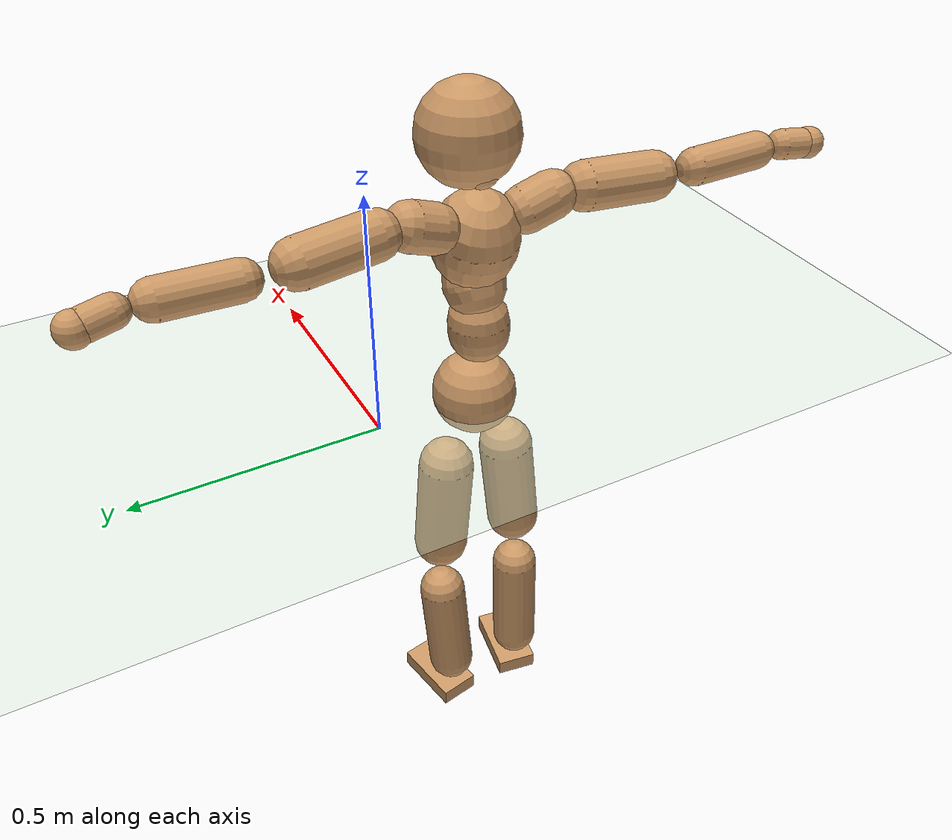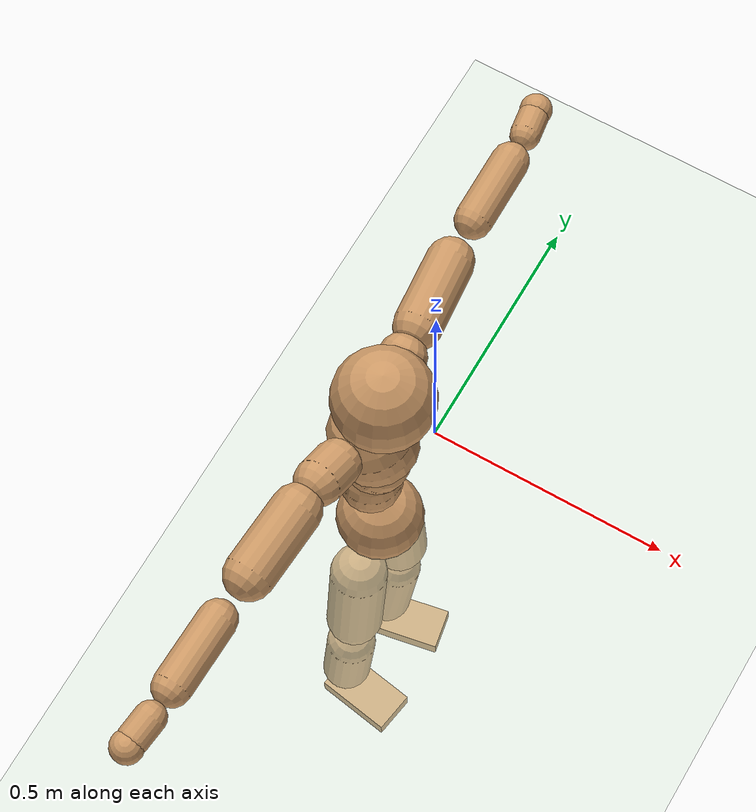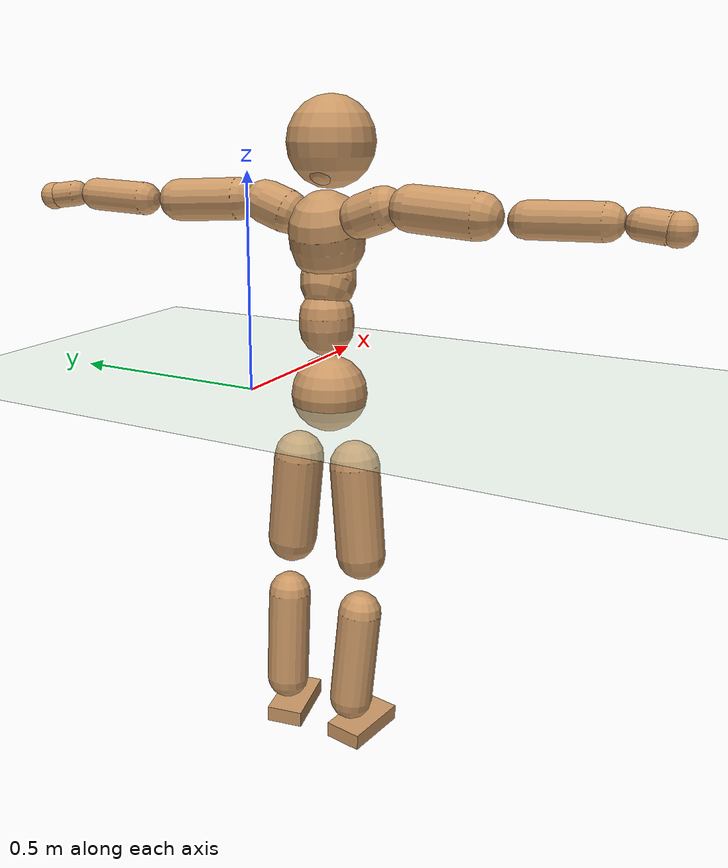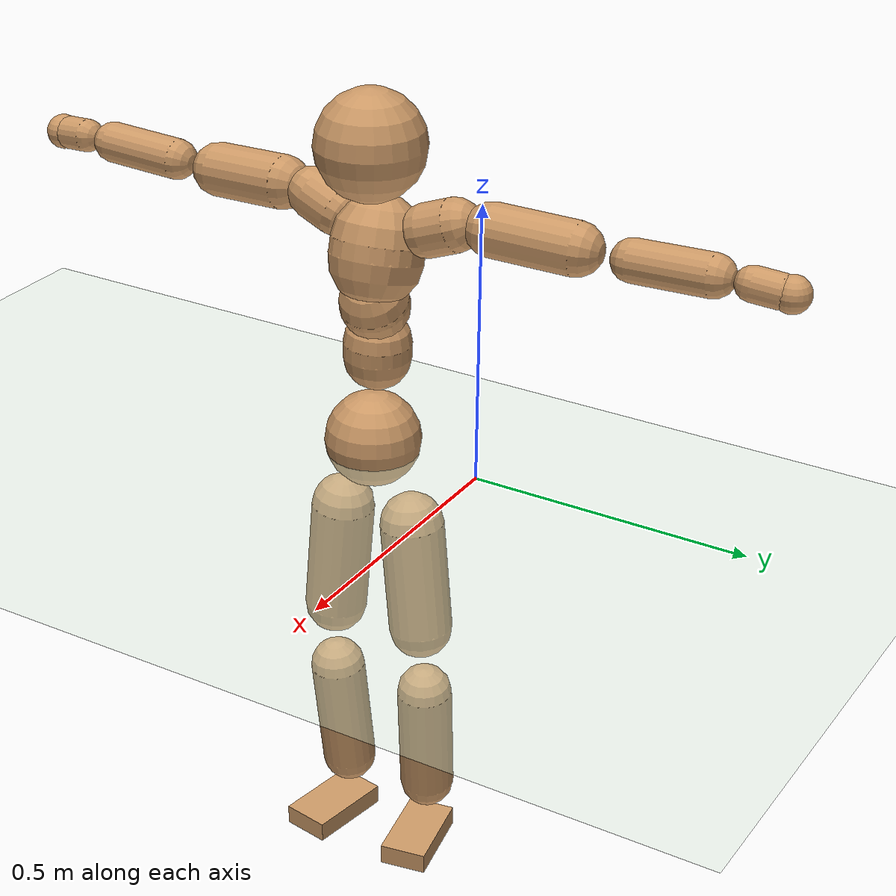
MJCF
<mujoco model="humanoid">
  <compiler coordinate="local"/>
  <default>
    <joint damping="0.0" armature="0.01" stiffness="0.0" limited="true"/>
    <geom conaffinity="1" condim="3" contype="7" margin="0.001" rgba="0.8 0.6 .4 1"/>
  </default>
  <asset>
    <texture type="skybox" builtin="gradient" rgb1=".4 .5 .6" rgb2="0 0 0" width="100" height="100"/>
    <texture builtin="flat" height="1278" mark="cross" markrgb="1 1 1" name="texgeom" random="0.01" rgb1="0.8 0.6 0.4" rgb2="0.8 0.6 0.4" type="cube" width="127"/>
    <texture builtin="checker" height="100" name="texplane" rgb1="0 0 0" rgb2="0.8 0.8 0.8" type="2d" width="100"/>
    <material name="MatPlane" reflectance="0.5" shininess="1" specular="1" texrepeat="60 60" texture="texplane"/>
    <material name="geom" texture="texgeom" texuniform="true"/>
  </asset>
  <worldbody>
    <light cutoff="100" diffuse="1 1 1" dir="-0 0 -1.3" directional="true" exponent="1" pos="0 0 1.3" specular=".1 .1 .1"/>
    <geom conaffinity="1" condim="3" name="floor" pos="0 0 0" rgba="0.8 0.9 0.8 1" size="100 100 .2" type="plane" material="MatPlane"/>
    <body name="Pelvis" pos="-0.0014 -0.2103 0.0211">
      <freejoint name="Pelvis"/>
      <geom type="sphere" contype="1" conaffinity="1" density="500" size="0.0864" pos="0.0000 0.0000 0.0000" name="Pelvis"/>
      <body name="L_Hip" pos="-0.0119 0.0665 -0.0874">
        <joint name="L_Hip_x" type="hinge" pos="0 0 0" axis="1 0 0" stiffness="800" damping="80" armature="0.02" range="-180.0000 180.0000"/>
        <joint name="L_Hip_y" type="hinge" pos="0 0 0" axis="0 1 0" stiffness="800" damping="80" armature="0.02" range="-180.0000 180.0000"/>
        <joint name="L_Hip_z" type="hinge" pos="0 0 0" axis="0 0 1" stiffness="800" damping="80" armature="0.02" range="-180.0000 180.0000"/>
        <geom type="capsule" contype="1" conaffinity="1" density="500" fromto="-0.0006 0.0062 -0.0712 -0.0024 0.0249 -0.2846" size="0.058" name="L_Hip"/>
        <body name="L_Knee" pos="-0.003 0.0312 -0.3558">
          <joint name="L_Knee_x" type="hinge" pos="0 0 0" axis="1 0 0" stiffness="800" damping="80" armature="0.02" range="-180.0000 180.0000"/>
          <joint name="L_Knee_y" type="hinge" pos="0 0 0" axis="0 1 0" stiffness="800" damping="80" armature="0.02" range="-180.0000 180.0000"/>
          <joint name="L_Knee_z" type="hinge" pos="0 0 0" axis="0 0 1" stiffness="800" damping="80" armature="0.02" range="-180.0000 180.0000"/>
          <geom type="capsule" contype="1" conaffinity="1" density="500" fromto="-0.0082 -0.0024 -0.0743 -0.0326 -0.0094 -0.2972" size="0.0508" name="L_Knee"/>
          <body name="L_Ankle" pos="-0.0408 -0.0118 -0.3715">
            <joint name="L_Ankle_x" type="hinge" pos="0 0 0" axis="1 0 0" stiffness="800" damping="80" armature="0.02" range="-180.0000 180.0000"/>
            <joint name="L_Ankle_y" type="hinge" pos="0 0 0" axis="0 1 0" stiffness="800" damping="80" armature="0.02" range="-180.0000 180.0000"/>
            <joint name="L_Ankle_z" type="hinge" pos="0 0 0" axis="0 0 1" stiffness="800" damping="80" armature="0.02" range="-180.0000 180.0000"/>
            <geom type="box" contype="1" conaffinity="1" density="500" pos="0.0563 0.0103 -0.0263" size="0.0806 0.0438 0.0193" quat="0.9959 0.0000 0.0000 0.0907" name="L_Ankle"/>
            <body name="L_Toe" pos="0.1126 0.0207 -0.0526">
              <joint name="L_Toe_x" type="hinge" pos="0 0 0" axis="1 0 0" stiffness="500" damping="50" armature="0.02" range="-180.0000 180.0000"/>
              <joint name="L_Toe_y" type="hinge" pos="0 0 0" axis="0 1 0" stiffness="500" damping="50" armature="0.02" range="-180.0000 180.0000"/>
              <joint name="L_Toe_z" type="hinge" pos="0 0 0" axis="0 0 1" stiffness="500" damping="50" armature="0.02" range="-180.0000 180.0000"/>
              <geom type="box" contype="1" conaffinity="1" density="500" pos="0.0000 0.0000 0.0258" size="0.0009 0.0022 0.0009" quat="0.9952 0.0000 0.0000 0.0976" name="L_Toe"/>
            </body>
          </body>
        </body>
      </body>
      <body name="R_Hip" pos="-0.0086 -0.0642 -0.0864">
        <joint name="R_Hip_x" type="hinge" pos="0 0 0" axis="1 0 0" stiffness="800" damping="80" armature="0.02" range="-180.0000 180.0000"/>
        <joint name="R_Hip_y" type="hinge" pos="0 0 0" axis="0 1 0" stiffness="800" damping="80" armature="0.02" range="-180.0000 180.0000"/>
        <joint name="R_Hip_z" type="hinge" pos="0 0 0" axis="0 0 1" stiffness="800" damping="80" armature="0.02" range="-180.0000 180.0000"/>
        <geom type="capsule" contype="1" conaffinity="1" density="500" fromto="-0.0012 -0.0071 -0.0725 -0.0048 -0.0286 -0.2901" size="0.0574" name="R_Hip"/>
        <body name="R_Knee" pos="-0.006 -0.0357 -0.3626">
          <joint name="R_Knee_x" type="hinge" pos="0 0 0" axis="1 0 0" stiffness="800" damping="80" armature="0.02" range="-180.0000 180.0000"/>
          <joint name="R_Knee_y" type="hinge" pos="0 0 0" axis="0 1 0" stiffness="800" damping="80" armature="0.02" range="-180.0000 180.0000"/>
          <joint name="R_Knee_z" type="hinge" pos="0 0 0" axis="0 0 1" stiffness="800" damping="80" armature="0.02" range="-180.0000 180.0000"/>
          <geom type="capsule" contype="1" conaffinity="1" density="500" fromto="-0.0078 0.0029 -0.0742 -0.0312 0.0115 -0.2968" size="0.0511" name="R_Knee"/>
          <body name="R_Ankle" pos="-0.039 0.0144 -0.371">
            <joint name="R_Ankle_x" type="hinge" pos="0 0 0" axis="1 0 0" stiffness="800" damping="80" armature="0.02" range="-180.0000 180.0000"/>
            <joint name="R_Ankle_y" type="hinge" pos="0 0 0" axis="0 1 0" stiffness="800" damping="80" armature="0.02" range="-180.0000 180.0000"/>
            <joint name="R_Ankle_z" type="hinge" pos="0 0 0" axis="0 0 1" stiffness="800" damping="80" armature="0.02" range="-180.0000 180.0000"/>
            <geom type="box" contype="1" conaffinity="1" density="500" pos="0.0578 -0.0095 -0.0222" size="0.0816 0.0449 0.0189" quat="0.9967 0.0000 0.0000 -0.0813" name="R_Ankle"/>
            <body name="R_Toe" pos="0.1157 -0.019 -0.0444">
              <joint name="R_Toe_x" type="hinge" pos="0 0 0" axis="1 0 0" stiffness="500" damping="50" armature="0.02" range="-180.0000 180.0000"/>
              <joint name="R_Toe_y" type="hinge" pos="0 0 0" axis="0 1 0" stiffness="500" damping="50" armature="0.02" range="-180.0000 180.0000"/>
              <joint name="R_Toe_z" type="hinge" pos="0 0 0" axis="0 0 1" stiffness="500" damping="50" armature="0.02" range="-180.0000 180.0000"/>
              <geom type="box" contype="1" conaffinity="1" density="500" pos="0.0000 0.0000 0.0243" size="0.0008 0.0022 0.001" quat="0.9974 0.0000 0.0000 -0.0717" name="R_Toe"/>
            </body>
          </body>
        </body>
      </body>
      <body name="Torso" pos="-0.0167 -0.0026 0.1004">
        <joint name="Torso_x" type="hinge" pos="0 0 0" axis="1 0 0" stiffness="1000" damping="100" armature="0.02" range="-180.0000 180.0000"/>
        <joint name="Torso_y" type="hinge" pos="0 0 0" axis="0 1 0" stiffness="1000" damping="100" armature="0.02" range="-180.0000 180.0000"/>
        <joint name="Torso_z" type="hinge" pos="0 0 0" axis="0 0 1" stiffness="1000" damping="100" armature="0.02" range="-180.0000 180.0000"/>
        <geom type="capsule" contype="1" conaffinity="1" density="500" fromto="0.0003 0.0024 0.0789 0.0002 0.0016 0.0526" size="0.060543" name="Torso"/>
        <body name="Spine" pos="0.0004 0.0039 0.1315">
          <joint name="Spine_x" type="hinge" pos="0 0 0" axis="1 0 0" stiffness="1000" damping="100" armature="0.02" range="-180.0000 180.0000"/>
          <joint name="Spine_y" type="hinge" pos="0 0 0" axis="0 1 0" stiffness="1000" damping="100" armature="0.02" range="-180.0000 180.0000"/>
          <joint name="Spine_z" type="hinge" pos="0 0 0" axis="0 0 1" stiffness="1000" damping="100" armature="0.02" range="-180.0000 180.0000"/>
          <geom type="capsule" contype="1" conaffinity="1" density="500" fromto="0.0156 0.0014 0.0292 0.0104 0.0009 0.0195" size="0.06138" name="Spine"/>
          <body name="Chest" pos="0.0259 0.0023 0.0487">
            <joint name="Chest_x" type="hinge" pos="0 0 0" axis="1 0 0" stiffness="1000" damping="100" armature="0.02" range="-180.0000 180.0000"/>
            <joint name="Chest_y" type="hinge" pos="0 0 0" axis="0 1 0" stiffness="1000" damping="100" armature="0.02" range="-180.0000 180.0000"/>
            <joint name="Chest_z" type="hinge" pos="0 0 0" axis="0 0 1" stiffness="1000" damping="100" armature="0.02" range="-180.0000 180.0000"/>
            <geom type="capsule" contype="1" conaffinity="1" density="500" fromto="-0.0241 -0.0008 0.0850 -0.0160 -0.0005 0.0567" size="0.082398" name="Chest"/>
            <body name="Neck" pos="-0.0464 -0.002 0.2008">
              <joint name="Neck_x" type="hinge" pos="0 0 0" axis="1 0 0" stiffness="500" damping="50" armature="0.02" range="-180.0000 180.0000"/>
              <joint name="Neck_y" type="hinge" pos="0 0 0" axis="0 1 0" stiffness="500" damping="50" armature="0.02" range="-180.0000 180.0000"/>
              <joint name="Neck_z" type="hinge" pos="0 0 0" axis="0 0 1" stiffness="500" damping="50" armature="0.02" range="-180.0000 180.0000"/>
              <geom type="capsule" contype="1" conaffinity="1" density="500" fromto="0.0099 0.0009 0.0125 0.0397 0.0036 0.0499" size="0.036735" name="Neck"/>
              <body name="Head" pos="0.0496 0.0045 0.0624">
                <joint name="Head_x" type="hinge" pos="0 0 0" axis="1 0 0" stiffness="500" damping="50" armature="0.02" range="-180.0000 180.0000"/>
                <joint name="Head_y" type="hinge" pos="0 0 0" axis="0 1 0" stiffness="500" damping="50" armature="0.02" range="-180.0000 180.0000"/>
                <joint name="Head_z" type="hinge" pos="0 0 0" axis="0 0 1" stiffness="500" damping="50" armature="0.02" range="-180.0000 180.0000"/>
                <geom type="sphere" contype="1" conaffinity="1" density="500" size="0.0961" pos="0.0000 0.0000 0.0000" name="Head"/>
              </body>
            </body>
            <body name="L_Thorax" pos="-0.0346 0.072 0.1134">
              <joint name="L_Thorax_x" type="hinge" pos="0 0 0" axis="1 0 0" stiffness="500" damping="50" armature="0.02" range="-180.0000 180.0000"/>
              <joint name="L_Thorax_y" type="hinge" pos="0 0 0" axis="0 1 0" stiffness="500" damping="50" armature="0.02" range="-180.0000 180.0000"/>
              <joint name="L_Thorax_z" type="hinge" pos="0 0 0" axis="0 0 1" stiffness="500" damping="50" armature="0.02" range="-180.0000 180.0000"/>
              <geom type="capsule" contype="1" conaffinity="1" density="500" fromto="-0.0011 0.0166 0.0061 -0.0045 0.0666 0.0246" size="0.047" name="L_Thorax"/>
              <body name="L_Shoulder" pos="-0.0057 0.0832 0.0307">
                <joint name="L_Shoulder_x" type="hinge" pos="0 0 0" axis="1 0 0" stiffness="500" damping="50" armature="0.02" range="-720.0000 720.0000"/>
                <joint name="L_Shoulder_y" type="hinge" pos="0 0 0" axis="0 1 0" stiffness="500" damping="50" armature="0.02" range="-720.0000 720.0000"/>
                <joint name="L_Shoulder_z" type="hinge" pos="0 0 0" axis="0 0 1" stiffness="500" damping="50" armature="0.02" range="-720.0000 720.0000"/>
                <geom type="capsule" contype="1" conaffinity="1" density="500" fromto="-0.0052 0.0493 -0.0024 -0.0208 0.1971 -0.0096" size="0.0463" name="L_Shoulder"/>
                <body name="L_Elbow" pos="-0.0261 0.2463 -0.012">
                  <joint name="L_Elbow_x" type="hinge" pos="0 0 0" axis="1 0 0" stiffness="500" damping="50" armature="0.02" range="-720.0000 720.0000"/>
                  <joint name="L_Elbow_y" type="hinge" pos="0 0 0" axis="0 1 0" stiffness="500" damping="50" armature="0.02" range="-720.0000 720.0000"/>
                  <joint name="L_Elbow_z" type="hinge" pos="0 0 0" axis="0 0 1" stiffness="500" damping="50" armature="0.02" range="-720.0000 720.0000"/>
                  <geom type="capsule" contype="1" conaffinity="1" density="500" fromto="-0.0001 0.0467 0.0016 -0.0005 0.1867 0.0065" size="0.0367" name="L_Elbow"/>
                  <body name="L_Wrist" pos="-0.0007 0.2334 0.0082">
                    <joint name="L_Wrist_x" type="hinge" pos="0 0 0" axis="1 0 0" stiffness="300" damping="30" armature="0.02" range="-180.0000 180.0000"/>
                    <joint name="L_Wrist_y" type="hinge" pos="0 0 0" axis="0 1 0" stiffness="300" damping="30" armature="0.02" range="-180.0000 180.0000"/>
                    <joint name="L_Wrist_z" type="hinge" pos="0 0 0" axis="0 0 1" stiffness="300" damping="30" armature="0.02" range="-180.0000 180.0000"/>
                    <geom type="capsule" contype="1" conaffinity="1" density="500" fromto="-0.0026 0.0156 -0.0019 -0.0104 0.0623 -0.0076" size="0.0293" name="L_Wrist"/>
                    <body name="L_Hand" pos="-0.013 0.0779 -0.0095">
                      <joint name="L_Hand_x" type="hinge" pos="0 0 0" axis="1 0 0" stiffness="300" damping="30" armature="0.02" range="-180.0000 180.0000"/>
                      <joint name="L_Hand_y" type="hinge" pos="0 0 0" axis="0 1 0" stiffness="300" damping="30" armature="0.02" range="-180.0000 180.0000"/>
                      <joint name="L_Hand_z" type="hinge" pos="0 0 0" axis="0 0 1" stiffness="300" damping="30" armature="0.02" range="-180.0000 180.0000"/>
                      <geom type="sphere" contype="1" conaffinity="1" density="500" size="0.0314" pos="0.0000 0.0000 0.0000" name="L_Hand"/>
                    </body>
                  </body>
                </body>
              </body>
            </body>
            <body name="R_Thorax" pos="-0.0393 -0.0737 0.1109">
              <joint name="R_Thorax_x" type="hinge" pos="0 0 0" axis="1 0 0" stiffness="500" damping="50" armature="0.02" range="-180.0000 180.0000"/>
              <joint name="R_Thorax_y" type="hinge" pos="0 0 0" axis="0 1 0" stiffness="500" damping="50" armature="0.02" range="-180.0000 180.0000"/>
              <joint name="R_Thorax_z" type="hinge" pos="0 0 0" axis="0 0 1" stiffness="500" damping="50" armature="0.02" range="-180.0000 180.0000"/>
              <geom type="capsule" contype="1" conaffinity="1" density="500" fromto="-0.0018 -0.0175 0.0063 -0.0072 -0.0701 0.0253" size="0.0461" name="R_Thorax"/>
              <body name="R_Shoulder" pos="-0.009 -0.0876 0.0317">
                <joint name="R_Shoulder_x" type="hinge" pos="0 0 0" axis="1 0 0" stiffness="500" damping="50" armature="0.02" range="-720.0000 720.0000"/>
                <joint name="R_Shoulder_y" type="hinge" pos="0 0 0" axis="0 1 0" stiffness="500" damping="50" armature="0.02" range="-720.0000 720.0000"/>
                <joint name="R_Shoulder_z" type="hinge" pos="0 0 0" axis="0 0 1" stiffness="500" damping="50" armature="0.02" range="-720.0000 720.0000"/>
                <geom type="capsule" contype="1" conaffinity="1" density="500" fromto="-0.0036 -0.0482 -0.0025 -0.0142 -0.1927 -0.0101" size="0.0477" name="R_Shoulder"/>
                <body name="R_Elbow" pos="-0.0178 -0.2408 -0.0126">
                  <joint name="R_Elbow_x" type="hinge" pos="0 0 0" axis="1 0 0" stiffness="500" damping="50" armature="0.02" range="-720.0000 720.0000"/>
                  <joint name="R_Elbow_y" type="hinge" pos="0 0 0" axis="0 1 0" stiffness="500" damping="50" armature="0.02" range="-720.0000 720.0000"/>
                  <joint name="R_Elbow_z" type="hinge" pos="0 0 0" axis="0 0 1" stiffness="500" damping="50" armature="0.02" range="-720.0000 720.0000"/>
                  <geom type="capsule" contype="1" conaffinity="1" density="500" fromto="-0.0010 -0.0481 0.0014 -0.0038 -0.1925 0.0055" size="0.0368" name="R_Elbow"/>
                  <body name="R_Wrist" pos="-0.0048 -0.2406 0.0069">
                    <joint name="R_Wrist_x" type="hinge" pos="0 0 0" axis="1 0 0" stiffness="300" damping="30" armature="0.02" range="-180.0000 180.0000"/>
                    <joint name="R_Wrist_y" type="hinge" pos="0 0 0" axis="0 1 0" stiffness="300" damping="30" armature="0.02" range="-180.0000 180.0000"/>
                    <joint name="R_Wrist_z" type="hinge" pos="0 0 0" axis="0 0 1" stiffness="300" damping="30" armature="0.02" range="-180.0000 180.0000"/>
                    <geom type="capsule" contype="1" conaffinity="1" density="500" fromto="-0.0020 -0.0157 -0.0014 -0.0081 -0.0629 -0.0057" size="0.03" name="R_Wrist"/>
                    <body name="R_Hand" pos="-0.0101 -0.0787 -0.0071">
                      <joint name="R_Hand_x" type="hinge" pos="0 0 0" axis="1 0 0" stiffness="300" damping="30" armature="0.02" range="-180.0000 180.0000"/>
                      <joint name="R_Hand_y" type="hinge" pos="0 0 0" axis="0 1 0" stiffness="300" damping="30" armature="0.02" range="-180.0000 180.0000"/>
                      <joint name="R_Hand_z" type="hinge" pos="0 0 0" axis="0 0 1" stiffness="300" damping="30" armature="0.02" range="-180.0000 180.0000"/>
                      <geom type="sphere" contype="1" conaffinity="1" density="500" size="0.0316" pos="0.0000 0.0000 0.0000" name="R_Hand"/>
                    </body>
                  </body>
                </body>
              </body>
            </body>
          </body>
        </body>
      </body>
    </body>
  </worldbody>
  <actuator>
    <motor name="L_Hip_x" joint="L_Hip_x" gear="500"/>
    <motor name="L_Hip_y" joint="L_Hip_y" gear="500"/>
    <motor name="L_Hip_z" joint="L_Hip_z" gear="500"/>
    <motor name="L_Knee_x" joint="L_Knee_x" gear="500"/>
    <motor name="L_Knee_y" joint="L_Knee_y" gear="500"/>
    <motor name="L_Knee_z" joint="L_Knee_z" gear="500"/>
    <motor name="L_Ankle_x" joint="L_Ankle_x" gear="500"/>
    <motor name="L_Ankle_y" joint="L_Ankle_y" gear="500"/>
    <motor name="L_Ankle_z" joint="L_Ankle_z" gear="500"/>
    <motor name="L_Toe_x" joint="L_Toe_x" gear="500"/>
    <motor name="L_Toe_y" joint="L_Toe_y" gear="500"/>
    <motor name="L_Toe_z" joint="L_Toe_z" gear="500"/>
    <motor name="R_Hip_x" joint="R_Hip_x" gear="500"/>
    <motor name="R_Hip_y" joint="R_Hip_y" gear="500"/>
    <motor name="R_Hip_z" joint="R_Hip_z" gear="500"/>
    <motor name="R_Knee_x" joint="R_Knee_x" gear="500"/>
    <motor name="R_Knee_y" joint="R_Knee_y" gear="500"/>
    <motor name="R_Knee_z" joint="R_Knee_z" gear="500"/>
    <motor name="R_Ankle_x" joint="R_Ankle_x" gear="500"/>
    <motor name="R_Ankle_y" joint="R_Ankle_y" gear="500"/>
    <motor name="R_Ankle_z" joint="R_Ankle_z" gear="500"/>
    <motor name="R_Toe_x" joint="R_Toe_x" gear="500"/>
    <motor name="R_Toe_y" joint="R_Toe_y" gear="500"/>
    <motor name="R_Toe_z" joint="R_Toe_z" gear="500"/>
    <motor name="Torso_x" joint="Torso_x" gear="500"/>
    <motor name="Torso_y" joint="Torso_y" gear="500"/>
    <motor name="Torso_z" joint="Torso_z" gear="500"/>
    <motor name="Spine_x" joint="Spine_x" gear="500"/>
    <motor name="Spine_y" joint="Spine_y" gear="500"/>
    <motor name="Spine_z" joint="Spine_z" gear="500"/>
    <motor name="Chest_x" joint="Chest_x" gear="500"/>
    <motor name="Chest_y" joint="Chest_y" gear="500"/>
    <motor name="Chest_z" joint="Chest_z" gear="500"/>
    <motor name="Neck_x" joint="Neck_x" gear="500"/>
    <motor name="Neck_y" joint="Neck_y" gear="500"/>
    <motor name="Neck_z" joint="Neck_z" gear="500"/>
    <motor name="Head_x" joint="Head_x" gear="500"/>
    <motor name="Head_y" joint="Head_y" gear="500"/>
    <motor name="Head_z" joint="Head_z" gear="500"/>
    <motor name="L_Thorax_x" joint="L_Thorax_x" gear="500"/>
    <motor name="L_Thorax_y" joint="L_Thorax_y" gear="500"/>
    <motor name="L_Thorax_z" joint="L_Thorax_z" gear="500"/>
    <motor name="L_Shoulder_x" joint="L_Shoulder_x" gear="500"/>
    <motor name="L_Shoulder_y" joint="L_Shoulder_y" gear="500"/>
    <motor name="L_Shoulder_z" joint="L_Shoulder_z" gear="500"/>
    <motor name="L_Elbow_x" joint="L_Elbow_x" gear="500"/>
    <motor name="L_Elbow_y" joint="L_Elbow_y" gear="500"/>
    <motor name="L_Elbow_z" joint="L_Elbow_z" gear="500"/>
    <motor name="L_Wrist_x" joint="L_Wrist_x" gear="500"/>
    <motor name="L_Wrist_y" joint="L_Wrist_y" gear="500"/>
    <motor name="L_Wrist_z" joint="L_Wrist_z" gear="500"/>
    <motor name="L_Hand_x" joint="L_Hand_x" gear="500"/>
    <motor name="L_Hand_y" joint="L_Hand_y" gear="500"/>
    <motor name="L_Hand_z" joint="L_Hand_z" gear="500"/>
    <motor name="R_Thorax_x" joint="R_Thorax_x" gear="500"/>
    <motor name="R_Thorax_y" joint="R_Thorax_y" gear="500"/>
    <motor name="R_Thorax_z" joint="R_Thorax_z" gear="500"/>
    <motor name="R_Shoulder_x" joint="R_Shoulder_x" gear="500"/>
    <motor name="R_Shoulder_y" joint="R_Shoulder_y" gear="500"/>
    <motor name="R_Shoulder_z" joint="R_Shoulder_z" gear="500"/>
    <motor name="R_Elbow_x" joint="R_Elbow_x" gear="500"/>
    <motor name="R_Elbow_y" joint="R_Elbow_y" gear="500"/>
    <motor name="R_Elbow_z" joint="R_Elbow_z" gear="500"/>
    <motor name="R_Wrist_x" joint="R_Wrist_x" gear="500"/>
    <motor name="R_Wrist_y" joint="R_Wrist_y" gear="500"/>
    <motor name="R_Wrist_z" joint="R_Wrist_z" gear="500"/>
    <motor name="R_Hand_x" joint="R_Hand_x" gear="500"/>
    <motor name="R_Hand_y" joint="R_Hand_y" gear="500"/>
    <motor name="R_Hand_z" joint="R_Hand_z" gear="500"/>
  </actuator>
  <contact>
    <exclude body1="Torso" body2="Chest"/>
    <exclude body1="Head" body2="Chest"/>
    <exclude body1="R_Knee" body2="R_Toe"/>
    <exclude body1="R_Knee" body2="L_Ankle"/>
    <exclude body1="R_Knee" body2="L_Toe"/>
    <exclude body1="L_Knee" body2="L_Toe"/>
    <exclude body1="L_Knee" body2="R_Ankle"/>
    <exclude body1="L_Knee" body2="R_Toe"/>
    <exclude body1="L_Shoulder" body2="Chest"/>
    <exclude body1="R_Shoulder" body2="Chest"/>
  </contact>
  <sensor/>
  <size njmax="700" nconmax="700"/>
</mujoco>
